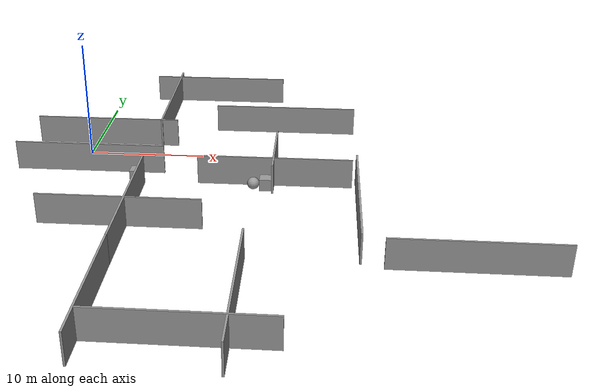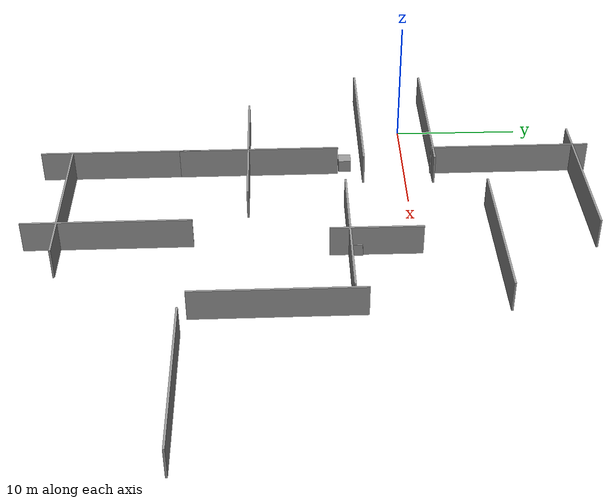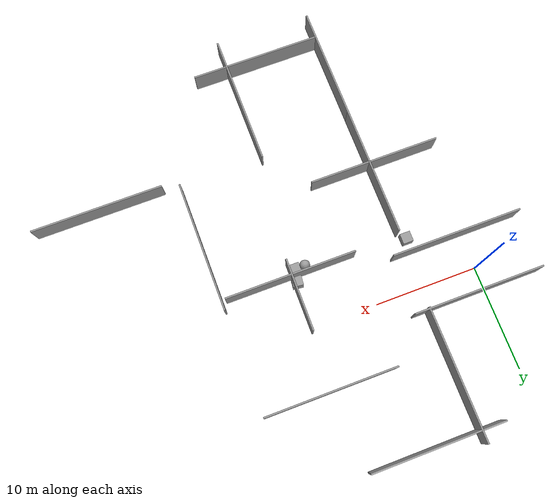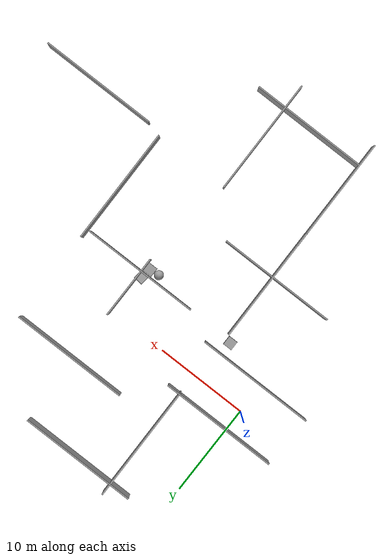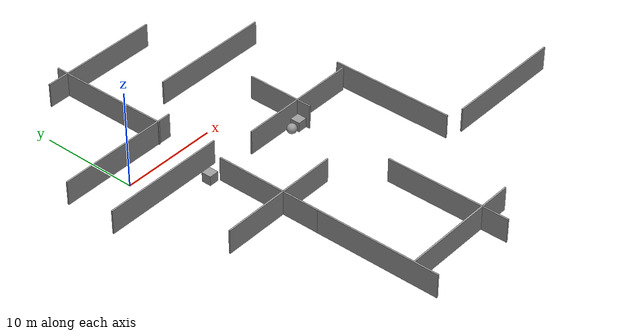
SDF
<sdf version="1.6">
 <world name="default">
  <light name="sun" type="directional">
   <pose>0 0 10 0 -0 0</pose>
   <diffuse>0.8 0.8 0.8 1</diffuse>
   <specular>0.2 0.2 0.2 1</specular>
   <attenuation>
    <range>1000</range>
    <constant>0.9</constant>
    <linear>0.01</linear>
    <quadratic>0.001</quadratic>
   </attenuation>
   <direction>-0.5 0.1 -0.9</direction>
  </light>
  <gravity>0 0 -9.8</gravity>
  <magnetic_field>6e-06 2.3e-05 -4.2e-05</magnetic_field>
  <atmosphere type="adiabatic"/>
  <physics name="default_physics" default="0" type="ode">
   <max_step_size>0.001</max_step_size>
   <real_time_factor>1</real_time_factor>
   <real_time_update_rate>1000</real_time_update_rate>
  </physics>
  <scene><ambient>0.4 0.4 0.4 1</ambient><background>0.7 0.7 0.7 1</background><shadows>1</shadows></scene>
  <spherical_coordinates>
   <surface_model>EARTH_WGS84</surface_model>
   <latitude_deg>0</latitude_deg>
   <longitude_deg>0</longitude_deg>
   <elevation>0</elevation>
   <heading_deg>0</heading_deg>
  </spherical_coordinates>
  <model name="walluse">
   <pose>0.848569 -3.41982 0 0 -0 0</pose>
   <link name="Wall_0">
    <collision name="Wall_0_Collision">
     <geometry><box><size>12.75 0.15 2.5</size></box></geometry>
     <pose>0 0 1.25 0 -0 0</pose>
    </collision>
    <visual name="Wall_0_Visual">
     <pose>0 0 1.25 0 -0 0</pose>
     <geometry><box><size>12.75 0.15 2.5</size></box></geometry>
     <material>
      <script><uri>file://media/materials/scripts/gazebo.material</uri><name>Gazebo/Grey</name></script>
      <ambient>1 1 1 1</ambient>
     </material>
     <meta><layer>0</layer></meta>
    </visual>
   </link>
   <static>1</static>
  </model>
  <model name="walluse_clone">
   <pose>1.09854 2.24298 0 0 -0 0</pose>
   <link name="Wall_0">
    <collision name="Wall_0_Collision">
     <geometry><box><size>12.75 0.15 2.5</size></box></geometry>
     <pose>0 0 1.25 0 -0 0</pose>
    </collision>
    <visual name="Wall_0_Visual">
     <pose>0 0 1.25 0 -0 0</pose>
     <geometry><box><size>12.75 0.15 2.5</size></box></geometry>
     <material>
      <script><uri>file://media/materials/scripts/gazebo.material</uri><name>Gazebo/Grey</name></script>
      <ambient>1 1 1 1</ambient>
     </material>
     <meta><layer>0</layer></meta>
    </visual>
   </link>
   <static>1</static>
  </model>
  <model name="walluse_clone_0">
   <pose>17.0076 5.9951 0 0 -0 0</pose>
   <link name="Wall_0">
    <collision name="Wall_0_Collision">
     <geometry><box><size>12.75 0.15 2.5</size></box></geometry>
     <pose>0 0 1.25 0 -0 0</pose>
    </collision>
    <visual name="Wall_0_Visual">
     <pose>0 0 1.25 0 -0 0</pose>
     <geometry><box><size>12.75 0.15 2.5</size></box></geometry>
     <material>
      <script><uri>file://media/materials/scripts/gazebo.material</uri><name>Gazebo/Grey</name></script>
      <ambient>1 1 1 1</ambient>
     </material>
     <meta><layer>0</layer></meta>
    </visual>
   </link>
   <static>1</static>
  </model>
  <model name="walluse_clone_1_clone">
   <pose>10.0005 13.5703 0 0 -0 0</pose>
   <link name="Wall_0">
    <collision name="Wall_0_Collision">
     <geometry><box><size>12.75 0.15 2.5</size></box></geometry>
     <pose>0 0 1.25 0 -0 0</pose>
    </collision>
    <visual name="Wall_0_Visual">
     <pose>0 0 1.25 0 -0 0</pose>
     <geometry><box><size>12.75 0.15 2.5</size></box></geometry>
     <material>
      <script><uri>file://media/materials/scripts/gazebo.material</uri><name>Gazebo/Grey</name></script>
      <ambient>1 1 1 1</ambient>
     </material>
     <meta><layer>0</layer></meta>
    </visual>
   </link>
   <static>1</static>
  </model>
  <model name="walluse_clone_0_clone_clone">
   <pose>5.98239 8.45043 0 0 -0 1.57672</pose>
   <link name="Wall_0">
    <collision name="Wall_0_Collision">
     <geometry><box><size>12.75 0.15 2.5</size></box></geometry>
     <pose>0 0 1.25 0 -0 0</pose>
    </collision>
    <visual name="Wall_0_Visual">
     <pose>0 0 1.25 0 -0 0</pose>
     <geometry><box><size>12.75 0.15 2.5</size></box></geometry>
     <material>
      <script><uri>file://media/materials/scripts/gazebo.material</uri><name>Gazebo/Grey</name></script>
      <ambient>1 1 1 1</ambient>
     </material>
     <meta><layer>0</layer></meta>
    </visual>
   </link>
   <static>1</static>
  </model>
  <model name="walluse_clone_1_clone_clone_0">
   <pose>16.6868 -5.05617 0 0 -0 0</pose>
   <link name="Wall_0">
    <collision name="Wall_0_Collision">
     <geometry><box><size>12.75 0.15 2.5</size></box></geometry>
     <pose>0 0 1.25 0 -0 0</pose>
    </collision>
    <visual name="Wall_0_Visual">
     <pose>0 0 1.25 0 -0 0</pose>
     <geometry><box><size>12.75 0.15 2.5</size></box></geometry>
     <material>
      <script><uri>file://media/materials/scripts/gazebo.material</uri><name>Gazebo/Grey</name></script>
      <ambient>1 1 1 1</ambient>
     </material>
     <meta><layer>0</layer></meta>
    </visual>
   </link>
   <static>1</static>
  </model>
  <model name="walluse_clone_0_clone_0">
   <pose>5.85185 -11.8072 0 0 -0 1.57672</pose>
   <link name="Wall_0">
    <collision name="Wall_0_Collision">
     <geometry><box><size>12.75 0.15 2.5</size></box></geometry>
     <pose>0 0 1.25 0 -0 0</pose>
    </collision>
    <visual name="Wall_0_Visual">
     <pose>0 0 1.25 0 -0 0</pose>
     <geometry><box><size>12.75 0.15 2.5</size></box></geometry>
     <material>
      <script><uri>file://media/materials/scripts/gazebo.material</uri><name>Gazebo/Grey</name></script>
      <ambient>1 1 1 1</ambient>
     </material>
     <meta><layer>0</layer></meta>
    </visual>
   </link>
   <static>1</static>
  </model>
  <model name="walluse_clone_0_clone_0_clone">
   <pose>23.4569 -10.4273 0 0 -0 1.57672</pose>
   <link name="Wall_0">
    <collision name="Wall_0_Collision">
     <geometry><box><size>12.75 0.15 2.5</size></box></geometry>
     <pose>0 0 1.25 0 -0 0</pose>
    </collision>
    <visual name="Wall_0_Visual">
     <pose>0 0 1.25 0 -0 0</pose>
     <geometry><box><size>12.75 0.15 2.5</size></box></geometry>
     <material>
      <script><uri>file://media/materials/scripts/gazebo.material</uri><name>Gazebo/Grey</name></script>
      <ambient>1 1 1 1</ambient>
     </material>
     <meta><layer>0</layer></meta>
    </visual>
   </link>
   <static>1</static>
  </model>
  <model name="walluse_clone_1_clone_0">
   <pose>5.37371 -12.6507 0 0 -0 0</pose>
   <link name="Wall_0">
    <collision name="Wall_0_Collision">
     <geometry><box><size>12.75 0.15 2.5</size></box></geometry>
     <pose>0 0 1.25 0 -0 0</pose>
    </collision>
    <visual name="Wall_0_Visual">
     <pose>0 0 1.25 0 -0 0</pose>
     <geometry><box><size>12.75 0.15 2.5</size></box></geometry>
     <material>
      <script><uri>file://media/materials/scripts/gazebo.material</uri><name>Gazebo/Grey</name></script>
      <ambient>1 1 1 1</ambient>
     </material>
     <meta><layer>0</layer></meta>
    </visual>
   </link>
   <static>1</static>
  </model>
  <model name="walluse_clone_0_clone_0_clone_clone">
   <pose>15.2744 -23.063 0 0 -0 1.57672</pose>
   <link name="Wall_0">
    <collision name="Wall_0_Collision">
     <geometry><box><size>12.75 0.15 2.5</size></box></geometry>
     <pose>0 0 1.25 0 -0 0</pose>
    </collision>
    <visual name="Wall_0_Visual">
     <pose>0 0 1.25 0 -0 0</pose>
     <geometry><box><size>12.75 0.15 2.5</size></box></geometry>
     <material>
      <script><uri>file://media/materials/scripts/gazebo.material</uri><name>Gazebo/Grey</name></script>
      <ambient>1 1 1 1</ambient>
     </material>
     <meta><layer>0</layer></meta>
    </visual>
   </link>
   <static>1</static>
  </model>
  <model name="walluse_clone_1_clone_clone_0_clone_clone">
   <pose>31.4846 -17.24 0 0 -0 0</pose>
   <link name="Wall_0">
    <collision name="Wall_0_Collision">
     <geometry><box><size>12.75 0.15 2.5</size></box></geometry>
     <pose>0 0 1.25 0 -0 0</pose>
    </collision>
    <visual name="Wall_0_Visual">
     <pose>0 0 1.25 0 -0 0</pose>
     <geometry><box><size>12.75 0.15 2.5</size></box></geometry>
     <material>
      <script><uri>file://media/materials/scripts/gazebo.material</uri><name>Gazebo/Grey</name></script>
      <ambient>1 1 1 1</ambient>
     </material>
     <meta><layer>0</layer></meta>
    </visual>
   </link>
   <static>1</static>
  </model>
  <model name="walluse_clone_0_clone_0_clone_0">
   <pose>5.90775 -22.8551 0 0 -0 1.57672</pose>
   <link name="Wall_0">
    <collision name="Wall_0_Collision">
     <geometry><box><size>12.75 0.15 2.5</size></box></geometry>
     <pose>0 0 1.25 0 -0 0</pose>
    </collision>
    <visual name="Wall_0_Visual">
     <pose>0 0 1.25 0 -0 0</pose>
     <geometry><box><size>12.75 0.15 2.5</size></box></geometry>
     <material>
      <script><uri>file://media/materials/scripts/gazebo.material</uri><name>Gazebo/Grey</name></script>
      <ambient>1 1 1 1</ambient>
     </material>
     <meta><layer>0</layer></meta>
    </visual>
   </link>
   <static>1</static>
  </model>
  <model name="unit_box">
   <pose>5.09051 -4.84814 0.499998 2e-06 7e-06 -7.7e-05</pose>
   <link name="link">
    <inertial>
     <mass>1</mass>
     <inertia>
      <ixx>0.166667</ixx>
      <ixy>0</ixy>
      <ixz>0</ixz>
      <iyy>0.166667</iyy>
      <iyz>0</iyz>
      <izz>0.166667</izz>
     </inertia>
    </inertial>
    <collision name="collision"><geometry><box><size>1 1 1</size></box></geometry></collision>
    <visual name="visual">
     <geometry><box><size>1 1 1</size></box></geometry>
     <material>
      <script><name>Gazebo/Grey</name><uri>file://media/materials/scripts/gazebo.material</uri></script>
     </material>
    </visual>
   </link>
  </model>
  <model name="walluse_clone_1_clone_1">
   <pose>12.2624 -26.722 0 0 -0 0</pose>
   <link name="Wall_0">
    <collision name="Wall_0_Collision">
     <geometry><box><size>12.75 0.15 2.5</size></box></geometry>
     <pose>0 0 1.25 0 -0 0</pose>
    </collision>
    <visual name="Wall_0_Visual">
     <pose>0 0 1.25 0 -0 0</pose>
     <geometry><box><size>12.75 0.15 2.5</size></box></geometry>
     <material>
      <script><uri>file://media/materials/scripts/gazebo.material</uri><name>Gazebo/Grey</name></script>
      <ambient>1 1 1 1</ambient>
     </material>
     <meta><layer>0</layer></meta>
    </visual>
   </link>
   <static>1</static>
  </model>
  <model name="unit_sphere_0">
   <pose>14.9914 -5.79945 0.499998 0.018807 -0.087977 0.001335</pose>
   <link name="link">
    <inertial>
     <mass>1</mass>
     <inertia><ixx>0.1</ixx><ixy>0</ixy><ixz>0</ixz><iyy>0.1</iyy><iyz>0</iyz><izz>0.1</izz></inertia>
    </inertial>
    <collision name="collision"><geometry><sphere><radius>0.5</radius></sphere></geometry></collision>
    <visual name="visual">
     <geometry><sphere><radius>0.5</radius></sphere></geometry>
     <material>
      <script><name>Gazebo/Grey</name><uri>file://media/materials/scripts/gazebo.material</uri></script>
     </material>
    </visual>
   </link>
  </model>
  <model name="wallyese">
   <pose>16.5881 -3.0586 0 0 -0 0</pose>
   <link name="Wall_2">
    <collision name="Wall_2_Collision">
     <geometry><box><size>7 0.15 2.5</size></box></geometry>
     <pose>0 0 1.25 0 -0 0</pose>
    </collision>
    <visual name="Wall_2_Visual">
     <pose>0 0 1.25 0 -0 0</pose>
     <geometry><box><size>7 0.15 2.5</size></box></geometry>
     <material>
      <script><uri>file://media/materials/scripts/gazebo.material</uri><name>Gazebo/Grey</name></script>
      <ambient>1 1 1 1</ambient>
     </material>
     <meta><layer>0</layer></meta>
    </visual>
    <pose>0 0 0 0 -0 -1.5708</pose>
   </link>
   <static>1</static>
  </model>
  <model name="unit_box_0">
   <pose>16.2437 -4.52623 0.457292 0.074145 -0.001327 -0.105668</pose>
   <link name="link">
    <inertial>
     <mass>1</mass>
     <inertia>
      <ixx>0.166667</ixx>
      <ixy>0</ixy>
      <ixz>0</ixz>
      <iyy>0.166667</iyy>
      <iyz>0</iyz>
      <izz>0.166667</izz>
     </inertia>
    </inertial>
    <collision name="collision"><geometry><box><size>1 1 1</size></box></geometry></collision>
    <visual name="visual">
     <geometry><box><size>1 1 1</size></box></geometry>
     <material>
      <script><name>Gazebo/Grey</name><uri>file://media/materials/scripts/gazebo.material</uri></script>
     </material>
    </visual>
   </link>
  </model>
  <model name="unit_box_0_clone">
   <pose>16.0114 -5.70545 0.500001 -9e-06 -1.1e-05 0.002788</pose>
   <link name="link">
    <inertial>
     <mass>1</mass>
     <inertia>
      <ixx>0.166667</ixx>
      <ixy>0</ixy>
      <ixz>0</ixz>
      <iyy>0.166667</iyy>
      <iyz>0</iyz>
      <izz>0.166667</izz>
     </inertia>
    </inertial>
    <collision name="collision"><geometry><box><size>1 1 1</size></box></geometry></collision>
    <visual name="visual">
     <geometry><box><size>1 1 1</size></box></geometry>
     <material>
      <script><name>Gazebo/Grey</name><uri>file://media/materials/scripts/gazebo.material</uri></script>
     </material>
    </visual>
   </link>
  </model>
 </world>
</sdf>
